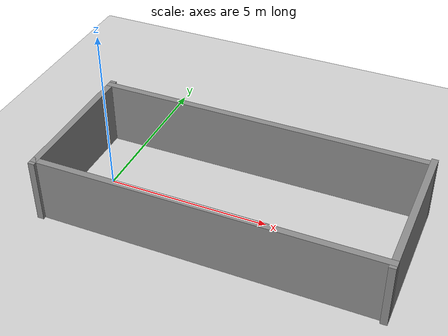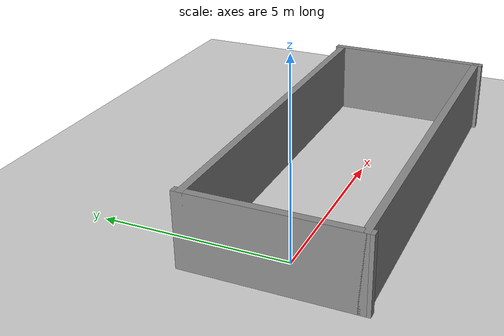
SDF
<?xml version="1.0" ?>
<sdf version="1.9">
  <world name="test_corridor_empty_path">
    <physics name="1ms" type="ignored">
      <max_step_size>0.001</max_step_size>
      <real_time_factor>1</real_time_factor>
      <real_time_update_rate>1000</real_time_update_rate>
    </physics>

    <plugin name="ignition::gazebo::systems::Physics" filename="ignition-gazebo-physics-system"/>
    <plugin name="ignition::gazebo::systems::UserCommands" filename="ignition-gazebo-user-commands-system"/>
    <plugin name="ignition::gazebo::systems::SceneBroadcaster" filename="ignition-gazebo-scene-broadcaster-system"/>
    <plugin name="ignition::gazebo::systems::Contact" filename="ignition-gazebo-contact-system"/>

    <gravity>0 0 -9.8</gravity>

    <scene>
      <ambient>0.45 0.45 0.45 1</ambient>
      <background>0.75 0.75 0.75 1</background>
      <shadows>true</shadows>
    </scene>

    <light name="sun" type="directional">
      <pose>0 0 10 0 0 0</pose>
      <cast_shadows>true</cast_shadows>
      <intensity>1.1</intensity>
      <direction>-0.5 0.1 -0.9</direction>
      <diffuse>0.9 0.9 0.9 1</diffuse>
      <specular>0.2 0.2 0.2 1</specular>
    </light>

    <model name="ground_plane">
      <static>true</static>
      <link name="link">
        <collision name="collision">
          <geometry>
            <plane>
              <normal>0 0 1</normal>
              <size>100.0 100.0</size>
            </plane>
          </geometry>
        </collision>
        <visual name="visual">
          <geometry>
            <plane>
              <normal>0 0 1</normal>
              <size>100.0 100.0</size>
            </plane>
          </geometry>
          <material>
            <ambient>0.82 0.82 0.82 1</ambient>
            <diffuse>0.82 0.82 0.82 1</diffuse>
          </material>
        </visual>
      </link>
    </model>

<model name="corridor_walls">
  <static>true</static>
  <link name="north_wall">
    <pose>4.0 2.1 1.0 0 0 0</pose>
    <collision name="collision"><geometry><box><size>10.4 0.2 2.0</size></box></geometry></collision>
    <visual name="visual">
      <geometry><box><size>10.4 0.2 2.0</size></box></geometry>
      <material><ambient>0.55 0.55 0.55 1</ambient><diffuse>0.55 0.55 0.55 1</diffuse></material>
    </visual>
  </link>
  <link name="south_wall">
    <pose>4.0 -2.1 1.0 0 0 0</pose>
    <collision name="collision"><geometry><box><size>10.4 0.2 2.0</size></box></geometry></collision>
    <visual name="visual">
      <geometry><box><size>10.4 0.2 2.0</size></box></geometry>
      <material><ambient>0.55 0.55 0.55 1</ambient><diffuse>0.55 0.55 0.55 1</diffuse></material>
    </visual>
  </link>
  <link name="west_wall">
    <pose>-1.1 0 1.0 0 0 0</pose>
    <collision name="collision"><geometry><box><size>0.2 4.6 2.0</size></box></geometry></collision>
    <visual name="visual">
      <geometry><box><size>0.2 4.6 2.0</size></box></geometry>
      <material><ambient>0.55 0.55 0.55 1</ambient><diffuse>0.55 0.55 0.55 1</diffuse></material>
    </visual>
  </link>
  <link name="east_wall">
    <pose>9.1 0 1.0 0 0 0</pose>
    <collision name="collision"><geometry><box><size>0.2 4.6 2.0</size></box></geometry></collision>
    <visual name="visual">
      <geometry><box><size>0.2 4.6 2.0</size></box></geometry>
      <material><ambient>0.55 0.55 0.55 1</ambient><diffuse>0.55 0.55 0.55 1</diffuse></material>
    </visual>
  </link>
</model>
  </world>
</sdf>
